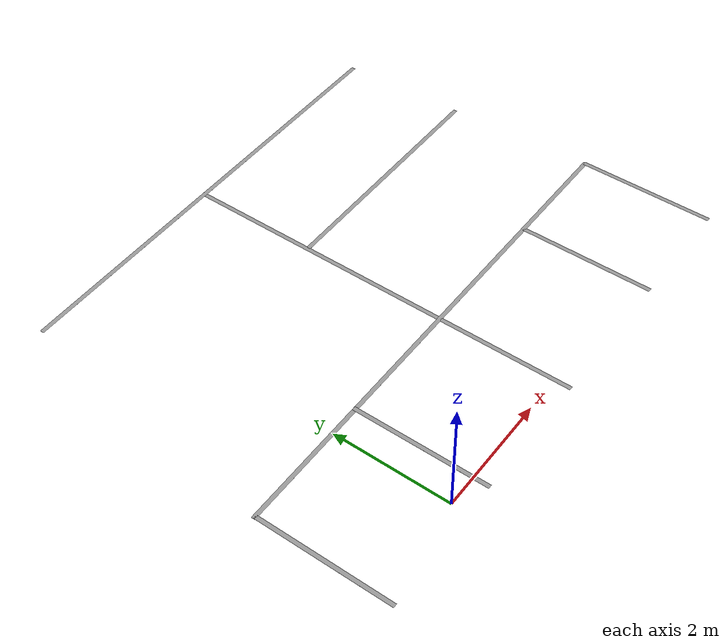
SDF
<?xml version='1.0'?>
<sdf version='1.7'>
  <model name='HospitalTrack'>
    <link name='HospitalTrack::HospitalTrack::link_1'>
      <inertial>
        <mass>1</mass>
        <inertia>
          <ixx>0.166667</ixx>
          <ixy>0</ixy>
          <ixz>0</ixz>
          <iyy>0.166667</iyy>
          <iyz>0</iyz>
          <izz>0.166667</izz>
        </inertia>
        <pose>0 0 0 0 -0 0</pose>
      </inertial>
      <pose>2.83381 6.64842 0.0005 0 -0 0</pose>
      <gravity>0</gravity>
      <self_collide>0</self_collide>
      <kinematic>1</kinematic>
      <enable_wind>0</enable_wind>
      <visual name='visual'>
        <pose>0 0 0 0 -0 0</pose>
        <geometry>
          <box>
            <size>7.73052 0.07 0.0001</size>
          </box>
        </geometry>
        <material>
          <lighting>1</lighting>
          <script>
            <uri>file://media/materials/scripts/gazebo.material</uri>
            <name>Gazebo/Grey</name>
          </script>
          <shader type='pixel'>
            <normal_map>__default__</normal_map>
          </shader>
          <ambient>0 0 0 1</ambient>
          <diffuse>0 0 0 1</diffuse>
          <specular>0 0 0 1</specular>
          <emissive>0 0 0 1</emissive>
        </material>
        <transparency>0</transparency>
        <cast_shadows>1</cast_shadows>
      </visual>
    </link>
    <link name='HospitalTrack::HospitalTrack::link_1_clone'>
      <inertial>
        <mass>1</mass>
        <inertia>
          <ixx>0.166667</ixx>
          <ixy>0</ixy>
          <ixz>0</ixz>
          <iyy>0.166667</iyy>
          <iyz>0</iyz>
          <izz>0.166667</izz>
        </inertia>
        <pose>0 0 0 0 -0 0</pose>
      </inertial>
      <pose>2.6429 3.20341 0.0005 0 0 -1.57031</pose>
      <gravity>0</gravity>
      <self_collide>0</self_collide>
      <kinematic>1</kinematic>
      <enable_wind>0</enable_wind>
      <visual name='visual'>
        <pose>0 0 0 0 -0 0</pose>
        <geometry>
          <box>
            <size>6.96223 0.07 0.0001</size>
          </box>
        </geometry>
        <material>
          <lighting>1</lighting>
          <script>
            <uri>file://media/materials/scripts/gazebo.material</uri>
            <name>Gazebo/Grey</name>
          </script>
          <shader type='pixel'>
            <normal_map>__default__</normal_map>
          </shader>
          <ambient>0 0 0 1</ambient>
          <diffuse>0 0 0 1</diffuse>
          <specular>0 0 0 1</specular>
          <emissive>0 0 0 1</emissive>
        </material>
        <transparency>0</transparency>
        <cast_shadows>1</cast_shadows>
      </visual>
    </link>
    <link name='HospitalTrack::HospitalTrack::link_1_clone_0'>
      <inertial>
        <mass>1</mass>
        <inertia>
          <ixx>0.166667</ixx>
          <ixy>0</ixy>
          <ixz>0</ixz>
          <iyy>0.166667</iyy>
          <iyz>0</iyz>
          <izz>0.166667</izz>
        </inertia>
        <pose>0 0 0.0005 0 -0 0</pose>
      </inertial>
      <pose>2.60138 2.00558 0.0005 0 -0 0</pose>
      <gravity>0</gravity>
      <self_collide>0</self_collide>
      <kinematic>1</kinematic>
      <enable_wind>0</enable_wind>
      <visual name='visual'>
        <pose>0 0 0 0 -0 0</pose>
        <geometry>
          <box>
            <size>8.67375 0.07 0.0001</size>
          </box>
        </geometry>
        <material>
          <lighting>1</lighting>
          <script>
            <uri>file://media/materials/scripts/gazebo.material</uri>
            <name>Gazebo/Grey</name>
          </script>
          <shader type='pixel'>
            <normal_map>__default__</normal_map>
          </shader>
          <ambient>0 0 0 1</ambient>
          <diffuse>0 0 0 1</diffuse>
          <specular>0 0 0 1</specular>
          <emissive>0 0 0 1</emissive>
        </material>
        <transparency>0</transparency>
        <cast_shadows>1</cast_shadows>
      </visual>
    </link>
    <link name='HospitalTrack::HospitalTrack::link_1_clone_clone'>
      <inertial>
        <mass>1</mass>
        <inertia>
          <ixx>0.166667</ixx>
          <ixy>0</ixy>
          <ixz>0</ixz>
          <iyy>0.166667</iyy>
          <iyz>0</iyz>
          <izz>0.166667</izz>
        </inertia>
        <pose>0 0 0 0 -0 0</pose>
      </inertial>
      <pose>6.91969 0.872001 0.0005 0 0 -1.57031</pose>
      <gravity>0</gravity>
      <self_collide>0</self_collide>
      <kinematic>1</kinematic>
      <enable_wind>0</enable_wind>
      <visual name='visual'>
        <pose>0 0 0 0 -0 0</pose>
        <geometry>
          <box>
            <size>2.30561 0.07 0.0001</size>
          </box>
        </geometry>
        <material>
          <lighting>1</lighting>
          <script>
            <uri>file://media/materials/scripts/gazebo.material</uri>
            <name>Gazebo/Grey</name>
          </script>
          <shader type='pixel'>
            <normal_map>__default__</normal_map>
          </shader>
          <ambient>0 0 0 1</ambient>
          <diffuse>0 0 0 1</diffuse>
          <specular>0 0 0 1</specular>
          <emissive>0 0 0 1</emissive>
        </material>
        <transparency>0</transparency>
        <cast_shadows>1</cast_shadows>
      </visual>
    </link>
    <link name='HospitalTrack::HospitalTrack::link_1_clone_clone_clone'>
      <inertial>
        <mass>1</mass>
        <inertia>
          <ixx>0.166667</ixx>
          <ixy>0</ixy>
          <ixz>0</ixz>
          <iyy>0.166667</iyy>
          <iyz>0</iyz>
          <izz>0.166667</izz>
        </inertia>
        <pose>0 0 0.0001 0 -0 0</pose>
      </inertial>
      <pose>5.00777 0.885997 0.0005 0 0 -1.57031</pose>
      <gravity>0</gravity>
      <self_collide>0</self_collide>
      <kinematic>1</kinematic>
      <enable_wind>0</enable_wind>
      <visual name='visual'>
        <pose>0 0 0 0 -0 0</pose>
        <geometry>
          <box>
            <size>2.30561 0.07 0.0001</size>
          </box>
        </geometry>
        <material>
          <lighting>1</lighting>
          <script>
            <uri>file://media/materials/scripts/gazebo.material</uri>
            <name>Gazebo/Grey</name>
          </script>
          <shader type='pixel'>
            <normal_map>__default__</normal_map>
          </shader>
          <ambient>0 0 0 1</ambient>
          <diffuse>0 0 0 1</diffuse>
          <specular>0 0 0 1</specular>
          <emissive>0 0 0 1</emissive>
        </material>
        <transparency>0</transparency>
        <cast_shadows>1</cast_shadows>
      </visual>
    </link>
    <link name='HospitalTrack::HospitalTrack::link_1_clone_clone_clone_clone'>
      <inertial>
        <mass>1</mass>
        <inertia>
          <ixx>0.166667</ixx>
          <ixy>0</ixy>
          <ixz>0</ixz>
          <iyy>0.166667</iyy>
          <iyz>0</iyz>
          <izz>0.166667</izz>
        </inertia>
        <pose>0 0 0.0001 0 -0 0</pose>
      </inertial>
      <pose>0.533539 0.885676 0.0005 0 0 -1.57031</pose>
      <gravity>0</gravity>
      <self_collide>0</self_collide>
      <kinematic>1</kinematic>
      <enable_wind>0</enable_wind>
      <visual name='visual'>
        <pose>0 0 0 0 -0 0</pose>
        <geometry>
          <box>
            <size>2.30561 0.07 0.0001</size>
          </box>
        </geometry>
        <material>
          <lighting>1</lighting>
          <script>
            <uri>file://media/materials/scripts/gazebo.material</uri>
            <name>Gazebo/Grey</name>
          </script>
          <shader type='pixel'>
            <normal_map>__default__</normal_map>
          </shader>
          <ambient>0 0 0 1</ambient>
          <diffuse>0 0 0 1</diffuse>
          <specular>0 0 0 1</specular>
          <emissive>0 0 0 1</emissive>
        </material>
        <transparency>0</transparency>
        <cast_shadows>1</cast_shadows>
      </visual>
    </link>
    <link name='HospitalTrack::HospitalTrack::link_1_clone_clone_clone_clone_0'>
      <inertial>
        <mass>1</mass>
        <inertia>
          <ixx>0.166667</ixx>
          <ixy>0</ixy>
          <ixz>0</ixz>
          <iyy>0.166667</iyy>
          <iyz>0</iyz>
          <izz>0.166667</izz>
        </inertia>
        <pose>0 0 0.0005 0 -0 0</pose>
      </inertial>
      <pose>-1.69477 0.867919 0.0005 0 0 -1.57031</pose>
      <gravity>0</gravity>
      <self_collide>0</self_collide>
      <kinematic>1</kinematic>
      <enable_wind>0</enable_wind>
      <visual name='visual'>
        <pose>0 0 0 0 -0 0</pose>
        <geometry>
          <box>
            <size>2.30561 0.07 0.0001</size>
          </box>
        </geometry>
        <material>
          <lighting>1</lighting>
          <script>
            <uri>file://media/materials/scripts/gazebo.material</uri>
            <name>Gazebo/Grey</name>
          </script>
          <shader type='pixel'>
            <normal_map>__default__</normal_map>
          </shader>
          <ambient>0 0 0 1</ambient>
          <diffuse>0 0 0 1</diffuse>
          <specular>0 0 0 1</specular>
          <emissive>0 0 0 1</emissive>
        </material>
        <transparency>0</transparency>
        <cast_shadows>1</cast_shadows>
      </visual>
    </link>
    <link name='link_1_clone_1'>
      <inertial>
        <mass>1</mass>
        <inertia>
          <ixx>0.166667</ixx>
          <ixy>0</ixy>
          <ixz>0</ixz>
          <iyy>0.166667</iyy>
          <iyz>0</iyz>
          <izz>0.166667</izz>
        </inertia>
        <pose>0 0 0 0 -0 0</pose>
      </inertial>
      <pose>4.72959 4.51793 0.0005 0 -0 0</pose>
      <gravity>0</gravity>
      <self_collide>0</self_collide>
      <kinematic>1</kinematic>
      <enable_wind>0</enable_wind>
      <visual name='visual'>
        <pose>0 0 0 0 -0 0</pose>
        <geometry>
          <box>
            <size>4.12127 0.07 0.0001</size>
          </box>
        </geometry>
        <material>
          <lighting>1</lighting>
          <script>
            <uri>file://media/materials/scripts/gazebo.material</uri>
            <name>Gazebo/Grey</name>
          </script>
          <shader type='pixel'>
            <normal_map>__default__</normal_map>
          </shader>
          <ambient>0 0 0 1</ambient>
          <diffuse>0 0 0 1</diffuse>
          <specular>0 0 0 1</specular>
          <emissive>0 0 0 1</emissive>
        </material>
        <transparency>0</transparency>
        <cast_shadows>1</cast_shadows>
      </visual>
    </link>
    <static>1</static>
    <allow_auto_disable>1</allow_auto_disable>
  </model>
</sdf>
